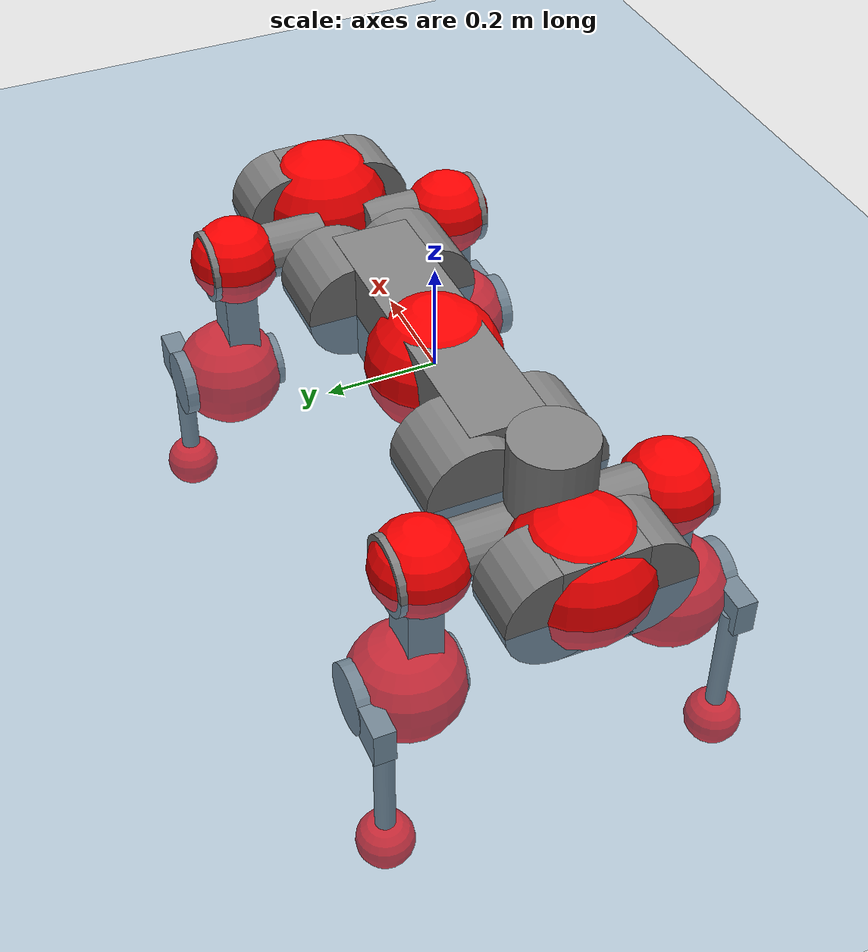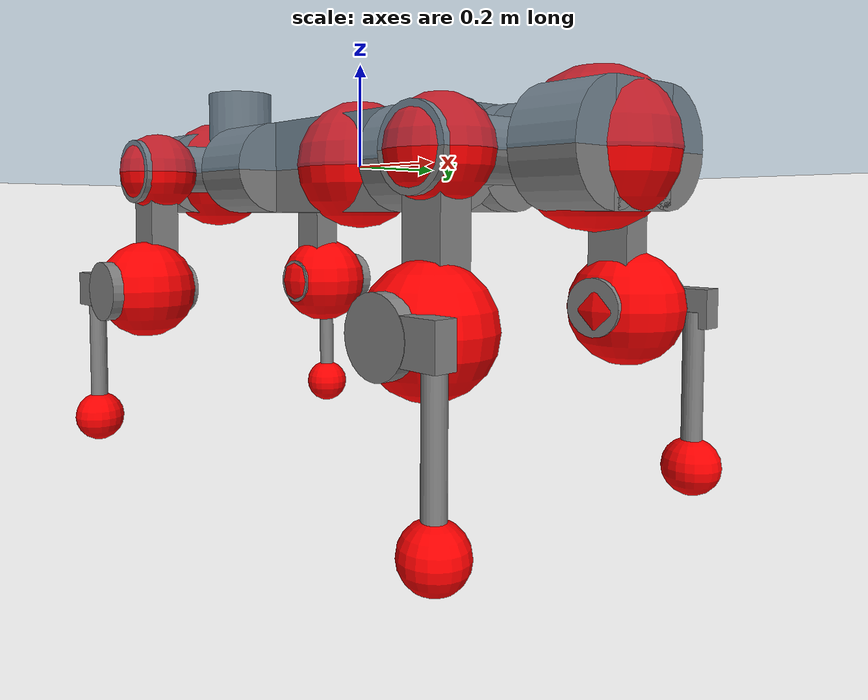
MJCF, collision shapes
<mujoco model="anymal_c">
  <compiler angle="radian" assetdir="assets" balanceinertia="true" inertiafromgeom="false"/>

  <option timestep="0.005" density="1.2" viscosity="2e-05"/>

  <size nkey="1"/>

  <visual>
    <quality shadowsize="8192"/>
    <map shadowclip="0.5"/>
  </visual>

  <default>
    <default class="/">
      <material specular="0" shininess="0.25"/>
      <geom contype="0" conaffinity="0" group="1" solref="-1000 -80"/>
      <site size="0.01 0.005 0.005" group="5"/>
      <general forcelimited="true" forcerange="-80 80" biastype="affine" gainprm="80" biasprm="0 -80 -2"/>
      <default class="anymal_c">
        <joint armature="0.01" damping="0.01" frictionloss="0.1"/>
        <default class="visual">
          <geom type="mesh" group="2"/>
          <default class="visual_zflip"/>
        </default>
        <default class="collision">
          <geom type="cylinder" group="3"/>
          <default class="foot">
            <geom size="0.03 0 0" type="sphere" condim="6" priority="1" friction="0.8 0.02 0.01" solimp="0.015 1 0.03"/>
          </default>
        </default>
      </default>
      <default class="reward_collision_sphere">
        <geom group="5" rgba="1 0 0 1"/>
      </default>
    </default>
  </default>

  <asset>
    <texture type="skybox" colorspace="auto" name="//unnamed_texture_0" builtin="gradient" rgb1="0.95 0.95 0.95" rgb2="0.95 0.95 0.95" width="100" height="600"/>
    <texture type="2d" colorspace="auto" name="texplane" builtin="checker" rgb1="0.345 0.575 0.748" rgb2="0.345 0.575 0.748" markrgb="1 1 1" width="512" height="512"/>
    <texture type="2d" colorspace="linear" name="base" file="base.png"/>
    <texture type="2d" colorspace="linear" name="top_shell" file="top_shell.png"/>
    <texture type="2d" colorspace="linear" name="bottom_shell" file="bottom_shell.png"/>
    <texture type="2d" colorspace="linear" name="remote" file="remote.png"/>
    <texture type="2d" colorspace="linear" name="hatch" file="hatch.png"/>
    <texture type="2d" colorspace="linear" name="handle" file="handle.png"/>
    <texture type="2d" colorspace="linear" name="face" file="face.png"/>
    <texture type="2d" colorspace="linear" name="battery" file="battery.png"/>
    <texture type="2d" colorspace="linear" name="lidar_cage" file="lidar_cage.png"/>
    <texture type="2d" colorspace="linear" name="depth_camera" file="depth_camera.png"/>
    <texture type="2d" colorspace="linear" name="wide_angle_camera" file="wide_angle_camera.png"/>
    <texture type="2d" colorspace="linear" name="lidar" file="lidar.png"/>
    <texture type="2d" colorspace="linear" name="drive" file="drive.png"/>
    <texture type="2d" colorspace="linear" name="hip_l" file="hip_l.png"/>
    <texture type="2d" colorspace="linear" name="shank_l" file="shank_l.png"/>
    <texture type="2d" colorspace="linear" name="foot" file="foot.png"/>
    <texture type="2d" colorspace="linear" name="thigh" file="thigh.png"/>
    <texture type="2d" colorspace="linear" name="shank_r" file="shank_r.png"/>
    <texture type="2d" colorspace="linear" name="hip_r" file="hip_r.png"/>
    <material name="MatPlane" class="/" texture="texplane" texuniform="true" texrepeat="2 2" specular="0.9" shininess="0.5"/>
    <material name="black_plastic" class="/" rgba="0.007 0.007 0.007 1"/>
    <material name="green" class="/" rgba="0.052 0.178 0.033 1"/>
    <material name="red" class="/" rgba="0.178 0.006 0.005 1"/>
    <material name="yellow" class="/" rgba="0.178 0.119 0.006 1"/>
    <material name="lwl" class="/" rgba="0.8 0.8 0.8 1"/>
    <material name="base" class="/" texture="base"/>
    <material name="top_shell" class="/" texture="top_shell"/>
    <material name="bottom_shell" class="/" texture="bottom_shell"/>
    <material name="hip_l" class="/" texture="hip_l"/>
    <material name="thigh" class="/" texture="thigh"/>
    <material name="shank_l" class="/" texture="shank_l"/>
    <material name="foot" class="/" texture="foot"/>
    <material name="hip_r" class="/" texture="hip_r"/>
    <material name="shank" class="/" texture="shank_r"/>
    <material name="hatch" class="/" texture="hatch"/>
    <material name="remote" class="/" texture="remote"/>
    <material name="handle" class="/" texture="handle"/>
    <material name="face" class="/" texture="face"/>
    <material name="depth_camera" class="/" texture="depth_camera"/>
    <material name="wide_angle_camera" class="/" texture="wide_angle_camera"/>
    <material name="battery" class="/" texture="battery"/>
    <material name="lidar_cage" class="/" texture="lidar_cage"/>
    <material name="lidar" class="/" texture="lidar"/>
    <material name="drive" class="/" texture="drive"/>
    <mesh name="base_0" class="/" file="base_0.obj"/>
    <mesh name="base_1" class="/" file="base_1.obj"/>
    <mesh name="base_2" class="/" file="base_2.obj"/>
    <mesh name="base_3" class="/" file="base_3.obj"/>
    <mesh name="base_4" class="/" file="base_4.obj"/>
    <mesh name="base_5" class="/" file="base_5.obj"/>
    <mesh name="top_shell" class="/" file="top_shell.obj"/>
    <mesh name="bottom_shell" class="/" file="bottom_shell.obj"/>
    <mesh name="remote" class="/" file="remote.obj"/>
    <mesh name="handle" class="/" file="handle.obj"/>
    <mesh name="face" class="/" file="face.obj"/>
    <mesh name="wide_angle_camera" class="/" file="wide_angle_camera.obj"/>
    <mesh name="depth_camera" class="/" file="depth_camera.obj"/>
    <mesh name="battery" class="/" file="battery.obj"/>
    <mesh name="lidar_cage" class="/" file="lidar_cage.obj"/>
    <mesh name="lidar" class="/" file="lidar.obj"/>
    <mesh name="drive" class="/" file="drive.obj"/>
    <mesh name="hip_l" class="/" file="hip_l.obj"/>
    <mesh name="thigh" class="/" file="thigh.obj"/>
    <mesh name="shank_l" class="/" file="shank_l.obj"/>
    <mesh name="foot" class="/" file="foot.obj"/>
    <mesh name="hip_r" class="/" file="hip_r.obj"/>
    <mesh name="hatch" class="/" file="hatch.obj"/>
    <mesh name="shank_r" class="/" file="shank_r.obj"/>
  </asset>

  <worldbody>
    <geom name="floor" class="/" size="100 100 0.125" type="plane" group="0" material="MatPlane"/>
    <light name="toplight_shadow" class="/" pos="0 0 5" dir="0.0990148 0.0990148 -0.990148" type="directional" ambient="0.04 0.04 0.04" diffuse="0.55 0.55 0.55" specular="0.12 0.12 0.12"/>
    <light name="toplight_fill" class="/" pos="0 0 5" dir="0.0990148 0.0990148 -0.990148" type="directional" castshadow="false" ambient="0.04 0.04 0.04" diffuse="0.3 0.3 0.3" specular="0.08 0.08 0.08"/>
    <body name="trunk" childclass="anymal_c" pos="-0.000483649 0.000302767 0.0043896" quat="1 0.000640879 0.000451503 -0.000340537">
      <inertial pos="0.00484178 -0.00808988 0.0402484" quat="0.500201 0.49933 0.501202 0.499265" mass="22.6872" diaginertia="1.59533 0.682832 0.134827"/>
      <joint name="//unnamed_joint_0" type="free" armature="0" damping="0" frictionloss="0"/>
      <geom name="//unnamed_geom_1" class="visual" material="green" mesh="base_0"/>
      <geom name="//unnamed_geom_2" class="visual" material="yellow" mesh="base_1"/>
      <geom name="//unnamed_geom_3" class="visual" material="red" mesh="base_2"/>
      <geom name="//unnamed_geom_4" class="visual" material="black_plastic" mesh="base_3"/>
      <geom name="//unnamed_geom_5" class="visual" material="lwl" mesh="base_4"/>
      <geom name="//unnamed_geom_6" class="visual" material="base" mesh="base_5"/>
      <geom name="trunk_1" class="collision" size="0.303 0.073138 0.0940345" type="box"/>
      <geom name="trunk_2" class="collision" size="0.0940345 0.07575" pos="0.264574 0.0706139 0" quat="0.707107 0 0.707107 0"/>
      <geom name="trunk_3" class="collision" size="0.0940345 0.07575" pos="-0.264574 0.0706139 0" quat="0.707107 0 0.707107 0"/>
      <geom name="trunk_4" class="collision" size="0.0940345 0.07575" pos="0.264574 -0.0706139 0" quat="0.707107 0 0.707107 0"/>
      <geom name="trunk_5" class="collision" size="0.0940345 0.07575" pos="-0.264574 -0.0706139 0" quat="0.707107 0 0.707107 0"/>
      <geom name="//unnamed_geom_12" class="visual" material="top_shell" mesh="top_shell"/>
      <geom name="//unnamed_geom_13" class="visual" material="bottom_shell" mesh="bottom_shell"/>
      <geom name="//unnamed_geom_14" class="visual" material="remote" mesh="remote"/>
      <geom name="//unnamed_geom_15" class="visual" material="handle" mesh="handle"/>
      <geom name="//unnamed_geom_16" class="visual" pos="0.504211 0 0" quat="1 0 0 0" material="face" mesh="face"/>
      <geom name="trunk_6" class="collision" size="0.0574655 0.073138 0.0940345" pos="0.571115 0 0" type="box"/>
      <geom name="//unnamed_geom_18" class="collision" size="0.0940345 0.0574655" pos="0.571115 0.0706139 0" quat="0.707107 0 0.707107 0"/>
      <geom name="//unnamed_geom_19" class="collision" size="0.0940345 0.0574655" pos="0.571115 -0.0706139 0" quat="0.707107 0 0.707107 0"/>
      <geom name="//unnamed_geom_20" class="visual" pos="0.561553 0 -0.0242166" quat="0.965926 0 0.258819 0" material="depth_camera" mesh="depth_camera"/>
      <geom name="//unnamed_geom_21" class="visual" pos="0.62403 0 0.0136119" material="wide_angle_camera" mesh="wide_angle_camera"/>
      <geom name="//unnamed_geom_22" class="visual_zflip" pos="-0.504211 0 0" quat="0 0 0 1" material="face" mesh="face"/>
      <geom name="trunk_7" class="collision" size="0.0574655 0.073138 0.0940345" pos="-0.571115 0 0" quat="0 0 0 1" type="box"/>
      <geom name="//unnamed_geom_24" class="collision" size="0.0940345 0.0574655" pos="-0.571115 -0.0706139 0" quat="0 -0.707107 0 0.707107"/>
      <geom name="//unnamed_geom_25" class="collision" size="0.0940345 0.0574655" pos="-0.571115 0.0706139 0" quat="0 -0.707107 0 0.707107"/>
      <geom name="//unnamed_geom_26" class="visual" pos="-0.561553 0 -0.0242166" quat="0 -0.258819 0 0.965926" material="depth_camera" mesh="depth_camera"/>
      <geom name="//unnamed_geom_27" class="visual_zflip" pos="-0.62403 0 0.0136119" quat="0 0 0 1" material="wide_angle_camera" mesh="wide_angle_camera"/>
      <geom name="//unnamed_geom_28" class="visual" material="battery" mesh="battery"/>
      <geom name="//unnamed_geom_29" class="visual" pos="0 0.0743929 0.028749" quat="0.683013 -0.183013 0.183013 0.683013" material="depth_camera" mesh="depth_camera"/>
      <geom name="//unnamed_geom_30" class="visual" pos="0 -0.0743929 0.028749" quat="0.683013 0.183013 0.183013 -0.683013" material="depth_camera" mesh="depth_camera"/>
      <geom name="//unnamed_geom_31" class="visual" pos="-0.442782 0 0.0668321" quat="1 0 0 0" material="lidar_cage" mesh="lidar_cage"/>
      <geom name="trunk_8" class="collision" size="0.073138 0.0626897" pos="-0.442782 0 0.121389"/>
      <geom name="//unnamed_geom_33" class="visual" pos="-0.442782 -8.15851e-05 0.1293" quat="0.707107 0 0 -0.707107" material="lidar" mesh="lidar"/>
      <geom name="//unnamed_geom_34" class="visual" pos="0.364808 0.104877 1.7162e-09" quat="0.258819 0.965926 0 0" material="drive" mesh="drive"/>
      <geom name="//unnamed_geom_35" class="visual" pos="0.364808 -0.104877 -1.7162e-09" quat="0.258819 -0.965926 0 0" material="drive" mesh="drive"/>
      <geom name="//unnamed_geom_36" class="visual" pos="-0.364808 0.104877 -1.7162e-09" quat="0 0 0.965926 -0.258819" material="drive" mesh="drive"/>
      <geom name="//unnamed_geom_37" class="visual" pos="-0.364808 -0.104877 1.7162e-09" quat="0 0 -0.965926 -0.258819" material="drive" mesh="drive"/>
      <geom name="//unnamed_geom_38" class="visual" pos="0.141106 0 0.0663775" quat="1 0 0 0" material="hatch" mesh="hatch"/>
      <geom name="//unnamed_geom_39" class="reward_collision_sphere" size="0.125379"/>
      <geom name="//unnamed_geom_40" class="reward_collision_sphere" size="0.125379" pos="0.547395 0 0"/>
      <geom name="//unnamed_geom_41" class="reward_collision_sphere" size="0.125379" pos="-0.547395 0 0"/>
      <site name="imu" pos="0.301415 0.020875 0.0392755" size="0.0104483"/>
      <camera name="track" pos="0 -2.01754 0" quat="0.707107 0.707107 0 0" mode="trackcom"/>
      <camera name="ego_camera" pos="0.547395 0 -0.0363712" quat="-0.5 -0.5 0.5 0.5"/>
      <body name="LF_HIP" pos="0.363768 0.108258 0.00204651" quat="0.258606 0.965983 -2.31205e-05 0.000260018">
        <inertial pos="0.0754451 -0.0166941 -0.00531434" quat="-0.122562 0.705412 -0.135274 0.684889" mass="3.13141" diaginertia="0.0155291 0.00526187 0.00196696"/>
        <joint name="LF_HAA" pos="0 0 0" axis="0.999987 -0.0048505 -0.00182613" range="-0.695442 0.480015" armature="0.00865149" damping="0" frictionloss="0.136032"/>
        <geom name="//unnamed_geom_42" class="visual" pos="0 0.000100957 -1.6582e-05" quat="0.258819 -0.965926 0 0" material="hip_l" mesh="hip_l"/>
        <geom name="//unnamed_geom_43" class="visual" pos="0.0728643 -0.0855211 -0.0486398" quat="0.183013 -0.683013 0.683013 0.183013" material="drive" mesh="drive"/>
        <geom name="//unnamed_geom_44" class="collision" size="0.0522414 0.073138" pos="0.0728643 -0.0120647 -0.00627858" quat="-0.353553 -0.612372 0.612372 -0.353553"/>
        <body name="LF_THIGH" pos="0.0738005 -0.0753615 -0.039492" quat="0.183189 -0.683102 0.682979 0.182628">
          <inertial pos="0.0361351 -0.000427279 -0.221032" quat="0.993769 0.0010848 -0.0802781 0.0773193" mass="3.84465" diaginertia="0.0790115 0.0316799 0.00313714"/>
          <joint name="LF_HFE" pos="0 0 0" axis="0.999973 0.00549645 -0.00491262" range="-3.06691 3.1158" armature="0.0105906" damping="0.00924166" frictionloss="0.115103"/>
          <geom name="//unnamed_geom_45" class="visual" pos="0.00413167 6.51054e-06 0" quat="0.707107 0 0 -0.707107" material="thigh" mesh="thigh"/>
          <geom name="//unnamed_geom_46" class="collision" size="0.0679138 0.0417931" pos="0.0486573 0 0" quat="0.5 0.5 -0.5 -0.5"/>
          <geom name="//unnamed_geom_47" class="collision" size="0.039181 0.0313448 0.147649" pos="0.036493 0 -0.128494" quat="0.707107 0 0 -0.707107" type="box"/>
          <geom name="//unnamed_geom_48" class="visual" pos="0.122008 0 -0.259145" quat="1 0 0 0" material="drive" mesh="drive"/>
          <geom name="//unnamed_geom_49" class="collision" size="0.0522414 0.073138" pos="0.0368579 0 -0.259145" quat="0.707107 0 0.707107 0"/>
          <geom name="//unnamed_geom_50" class="reward_collision_sphere" size="0.0835862" pos="0.0304108 0 0"/>
          <body name="LF_SHANK" pos="0.123251 -0.00419717 -0.264162" quat="0.999993 -0.000201747 -0.00356314 -0.00127141">
            <inertial pos="0.00464155 -0.0619255 -0.0732628" quat="0.993014 -0.115707 -3.5647e-05 -0.0231276" mass="0.715578" diaginertia="0.0268784 0.0100273 0.000756297"/>
            <joint name="LF_KFE" pos="0 0 0" axis="0.999993 0.00329413 -0.00149545" stiffness="0.00142668" range="-3.10179 3.10973" armature="0.0112418" damping="0" frictionloss="0.127563"/>
            <geom name="//unnamed_geom_51" class="visual" pos="0.00134725 0.00718359 0" quat="0.707107 0 0 -0.707107" material="shank_l" mesh="shank_l"/>
            <geom name="LF_kfe_act" class="collision" size="0.0626897 0.0208966" pos="0.0243287 0 0" quat="0.5 0.5 -0.5 -0.5"/>
            <geom name="//unnamed_geom_53" class="collision" size="0.0600766 0.0352629 0.0198517" pos="0.0243287 -0.0580033 0" quat="0.5 0.5 -0.5 -0.5" type="box"/>
            <geom name="//unnamed_geom_54" class="visual" pos="0.0158741 -0.0864064 -0.30731" quat="0.382683 0 0 -0.92388" material="foot" mesh="foot"/>
            <geom name="LF_calf" class="collision" size="0.0182845 0.147584" pos="0.0158744 -0.0887213 -0.153655" quat="0.707107 0 0 -0.707107"/>
            <geom name="LF_foot" class="foot" size="0.0247462" pos="0.0158744 -0.0887213 -0.286851" quat="0.707107 0 0 -0.707107"/>
            <geom name="//unnamed_geom_57" class="reward_collision_sphere" size="0.104483" pos="-0.0608216 0 0"/>
            <geom name="//unnamed_geom_58" class="reward_collision_sphere" size="0.0522414" pos="0.0158744 -0.0887213 -0.286851"/>
            <site name="LF_foot" class="foot" pos="0.0158744 -0.0887213 -0.286851" quat="0.707107 0 0 -0.707107" size="0.0104483"/>
          </body>
        </body>
      </body>
      <body name="RF_HIP" pos="0.364763 -0.101917 -0.000619747" quat="0.261471 -0.965211 0.000447384 0.000812031">
        <inertial pos="0.0686193 0.0174651 -0.00922353" quat="0.136354 0.677825 0.126195 0.711362" mass="3.46088" diaginertia="0.0165508 0.00572559 0.00202611"/>
        <joint name="RF_HAA" pos="0 0 0" axis="0.999994 -0.0028181 -0.00204806" range="-0.59504 0.869611" armature="0.00970581" damping="0.0114919" frictionloss="0.122807"/>
        <geom name="//unnamed_geom_59" class="visual" pos="0 -0.000100956 -1.6582e-05" quat="0.258819 0.965926 0 0" material="hip_r" mesh="hip_r"/>
        <geom name="//unnamed_geom_60" class="visual" pos="0.0728643 0.0855211 -0.0486398" quat="0.183013 0.683013 0.683013 -0.183013" material="drive" mesh="drive"/>
        <geom name="//unnamed_geom_61" class="collision" size="0.0522414 0.073138" pos="0.0728643 0.0120647 -0.00627858" quat="-0.353553 0.612372 0.612372 0.353553"/>
        <body name="RF_THIGH" pos="0.0639901 0.0705131 -0.0373984" quat="0.182876 0.683123 0.682996 -0.182801">
          <inertial pos="0.0392633 -0.00187604 -0.222922" quat="0.992842 -0.00664263 -0.0807079 0.0877891" mass="3.17406" diaginertia="0.0780374 0.0280524 0.00234129"/>
          <joint name="RF_HFE" pos="0 0 0" axis="0.999233 -0.0220388 0.0323634" stiffness="0.00489988" range="-3.32798 3.29034" armature="0.0112184" damping="0.033445" frictionloss="0.0992373"/>
          <geom name="//unnamed_geom_62" class="visual" pos="0.00413167 6.51054e-06 0" quat="0.707107 0 0 -0.707107" material="thigh" mesh="thigh"/>
          <geom name="//unnamed_geom_63" class="collision" size="0.0679138 0.0417931" pos="0.0486573 0 0" quat="0.5 0.5 0.5 0.5"/>
          <geom name="//unnamed_geom_64" class="collision" size="0.039181 0.0313448 0.147649" pos="0.036493 0 -0.128494" quat="0.707107 0 0 0.707107" type="box"/>
          <geom name="//unnamed_geom_65" class="visual" pos="0.122008 0 -0.259145" quat="1 0 0 0" material="drive" mesh="drive"/>
          <geom name="//unnamed_geom_66" class="collision" size="0.0522414 0.073138" pos="0.0368579 0 -0.259145" quat="0.707107 0 0.707107 0"/>
          <geom name="//unnamed_geom_67" class="reward_collision_sphere" size="0.0835862" pos="0.0304108 0 0"/>
          <body name="RF_SHANK" pos="0.114108 0.00142048 -0.261336" quat="1 -0.000384433 4.98755e-05 -0.000580745">
            <inertial pos="0.00737795 0.0607776 -0.0820369" quat="0.992827 0.116667 -0.00263282 0.0260122" mass="0.755423" diaginertia="0.0261553 0.00948706 0.000684221"/>
            <joint name="RF_KFE" pos="0 0 0" axis="0.998863 0.0339163 0.0334939" stiffness="0.000768495" range="-3.12959 3.25997" armature="0.0103511" damping="0.0177677" frictionloss="0.153661"/>
            <geom name="//unnamed_geom_68" class="visual" pos="0.00134724 -0.00718358 0" quat="0.707107 0 0 0.707107" material="shank" mesh="shank_r"/>
            <geom name="RF_kfe_act" class="collision" size="0.0626897 0.0208966" pos="0.0243287 0 0" quat="0.5 0.5 0.5 0.5"/>
            <geom name="//unnamed_geom_70" class="collision" size="0.0600766 0.0352629 0.0198517" pos="0.0243287 0.0580033 0" quat="0.5 0.5 0.5 0.5" type="box"/>
            <geom name="//unnamed_geom_71" class="visual" pos="0.0158748 0.0864064 -0.30731" quat="0.382683 0 0 0.92388" material="foot" mesh="foot"/>
            <geom name="RF_calf" class="collision" size="0.0182845 0.147584" pos="0.0158744 0.0887213 -0.153655" quat="0.707107 0 0 0.707107"/>
            <geom name="RF_foot" class="foot" size="0.0316146" pos="0.0158744 0.0887213 -0.286851" quat="0.707107 0 0 0.707107"/>
            <geom name="//unnamed_geom_74" class="reward_collision_sphere" size="0.104483" pos="-0.0608216 0 0"/>
            <geom name="//unnamed_geom_75" class="reward_collision_sphere" size="0.0522414" pos="0.0158744 0.0887213 -0.286851"/>
            <site name="RF_foot" class="foot" pos="0.0158744 0.0887213 -0.286851" quat="0.707107 0 0 0.707107" size="0.0104483"/>
          </body>
        </body>
      </body>
      <body name="LH_HIP" pos="-0.365658 0.10031 0.00152758" quat="0.000837153 -0.000252029 0.965958 -0.258699">
        <inertial pos="0.0709508 0.0216352 -0.00599271" quat="0.135946 0.64234 0.143072 0.740573" mass="3.56853" diaginertia="0.0156227 0.00491907 0.00208637"/>
        <joint name="LH_HAA" pos="0 0 0" axis="0.999747 -0.0223899 0.00193385" stiffness="0.0249182" range="-0.470922 0.757584" armature="0.0101933" damping="0.0249798" frictionloss="0.0934029"/>
        <geom name="//unnamed_geom_76" class="visual" pos="0 -0.000100956 -1.6582e-05" quat="-0.258819 -0.965926 0 0" material="hip_r" mesh="hip_r"/>
        <geom name="//unnamed_geom_77" class="visual" pos="0.0728643 0.0855211 -0.0486398" quat="0.183013 0.683013 0.683013 -0.183013" material="drive" mesh="drive"/>
        <geom name="//unnamed_geom_78" class="collision" size="0.0522414 0.073138" pos="0.0728643 0.0120647 -0.00627858" quat="-0.353553 0.612372 0.612372 0.353553"/>
        <body name="LH_THIGH" pos="0.0715421 0.0796407 -0.0363978" quat="0.183595 0.683553 0.682474 -0.182424">
          <inertial pos="0.0376895 0.00428232 -0.222966" quat="0.993198 -0.00456849 -0.0781465 0.0861924" mass="3.3907" diaginertia="0.0714395 0.0291265 0.00229684"/>
          <joint name="LH_HFE" pos="0 0 0" axis="0.999999 0.000293726 0.00103359" range="-3.12855 3.1454" armature="0.0108565" damping="0.00616886" frictionloss="0.101149"/>
          <geom name="//unnamed_geom_79" class="visual" pos="0.00413167 6.51054e-06 0" quat="0.707107 0 0 -0.707107" material="thigh" mesh="thigh"/>
          <geom name="//unnamed_geom_80" class="collision" size="0.0679138 0.0417931" pos="0.0486573 0 0" quat="0.5 0.5 -0.5 -0.5"/>
          <geom name="//unnamed_geom_81" class="collision" size="0.039181 0.0313448 0.147649" pos="0.036493 0 -0.128494" quat="0.707107 0 0 -0.707107" type="box"/>
          <geom name="//unnamed_geom_82" class="visual" pos="0.122008 0 -0.259145" quat="1 0 0 0" material="drive" mesh="drive"/>
          <geom name="//unnamed_geom_83" class="collision" size="0.0522414 0.073138" pos="0.0368579 0 -0.259145" quat="0.707107 0 0.707107 0"/>
          <geom name="//unnamed_geom_84" class="reward_collision_sphere" size="0.0835862" pos="0.0304108 0 0"/>
          <body name="LH_SHANK" pos="0.117049 0.000612391 -0.258719" quat="0.999996 -0.00111257 -0.00193197 -0.00193101">
            <inertial pos="0.00142424 0.061905 -0.0693457" quat="0.993024 0.115103 -0.00148621 0.0255437" mass="0.637242" diaginertia="0.0236409 0.00766817 0.000532786"/>
            <joint name="LH_KFE" pos="0 0 0" axis="0.999866 0.0153716 -0.00566299" range="-3.13408 3.34115" armature="0.0107549" damping="0" frictionloss="0.0951209"/>
            <geom name="//unnamed_geom_85" class="visual" pos="0.00134724 -0.00718358 0" quat="-0.707107 0 0 -0.707107" material="shank" mesh="shank_r"/>
            <geom name="LH_kfe_act" class="collision" size="0.0626897 0.0208966" pos="0.0243287 0 0" quat="0.5 0.5 -0.5 -0.5"/>
            <geom name="//unnamed_geom_87" class="collision" size="0.0600766 0.0352629 0.0198517" pos="0.0243287 0.0580033 0" quat="0.5 0.5 -0.5 -0.5" type="box"/>
            <geom name="//unnamed_geom_88" class="visual" pos="0.0158748 0.0864064 -0.30731" quat="-0.382683 0 0 -0.92388" material="foot" mesh="foot"/>
            <geom name="LH_calf" class="collision" size="0.0182845 0.147584" pos="0.0158744 0.0887213 -0.153655" quat="0.707107 0 0 -0.707107"/>
            <geom name="LH_foot" class="foot" size="0.0409471" pos="0.0158744 0.0887213 -0.286851" quat="0.707107 0 0 -0.707107"/>
            <geom name="//unnamed_geom_91" class="reward_collision_sphere" size="0.104483" pos="-0.0608216 0 0"/>
            <geom name="//unnamed_geom_92" class="reward_collision_sphere" size="0.0522414" pos="0.0158744 0.0887213 -0.286851"/>
            <site name="LH_foot" class="foot" pos="0.0158744 0.0887213 -0.286851" quat="0.707107 0 0 -0.707107" size="0.0104483"/>
          </body>
        </body>
      </body>
      <body name="RH_HIP" pos="-0.36543 -0.110356 0.00459791" quat="-0.000907314 -0.00309793 -0.966086 -0.258201">
        <inertial pos="0.0700625 -0.0173086 -0.00623155" quat="-0.152339 0.727519 -0.104851 0.660693" mass="3.29389" diaginertia="0.0156444 0.00550254 0.00215688"/>
        <joint name="RH_HAA" pos="0 0 0" axis="1 -0.000393051 0.000651584" range="-0.5934 0.509473" armature="0.0142693" damping="0.0196652" frictionloss="0.0869807"/>
        <geom name="//unnamed_geom_93" class="visual" pos="0 0.000100957 -1.6582e-05" quat="-0.258819 0.965926 0 0" material="hip_l" mesh="hip_l"/>
        <geom name="//unnamed_geom_94" class="visual" pos="0.0728643 -0.0855211 -0.0486398" quat="-0.183013 0.683013 -0.683013 -0.183013" material="drive" mesh="drive"/>
        <geom name="//unnamed_geom_95" class="collision" size="0.0522414 0.073138" pos="0.0728643 -0.0120647 -0.00627858" quat="0.353553 0.612372 -0.612372 0.353553"/>
        <body name="RH_THIGH" pos="0.0709175 -0.071405 -0.0299496" quat="-0.18258 0.682772 -0.683331 -0.183155">
          <inertial pos="0.037464 -0.00961047 -0.226104" quat="0.992046 0.00646622 -0.10222 0.0731768" mass="3.92812" diaginertia="0.0880191 0.034316 0.00283908"/>
          <joint name="RH_HFE" pos="0 0 0" axis="0.999843 0.0119582 0.0130963" range="-3.16106 3.29302" armature="0.00506743" damping="0.00586231" frictionloss="0.105168"/>
          <geom name="//unnamed_geom_96" class="visual" pos="0.00413167 6.51054e-06 0" quat="0.707107 0 0 -0.707107" material="thigh" mesh="thigh"/>
          <geom name="//unnamed_geom_97" class="collision" size="0.0679138 0.0417931" pos="0.0486573 0 0" quat="0.5 0.5 0.5 0.5"/>
          <geom name="//unnamed_geom_98" class="collision" size="0.039181 0.0313448 0.147649" pos="0.036493 0 -0.128494" quat="0.707107 0 0 0.707107" type="box"/>
          <geom name="//unnamed_geom_99" class="visual" pos="0.122008 0 -0.259145" quat="1 0 0 0" material="drive" mesh="drive"/>
          <geom name="//unnamed_geom_100" class="collision" size="0.0522414 0.073138" pos="0.0368579 0 -0.259145" quat="0.707107 0 0.707107 0"/>
          <geom name="//unnamed_geom_101" class="reward_collision_sphere" size="0.0835862" pos="0.0304108 0 0"/>
          <body name="RH_SHANK" pos="0.124802 0.00533029 -0.256886" quat="0.999997 0.00136577 0.000659132 0.0017913">
            <inertial pos="0.00473895 -0.0626328 -0.0732922" quat="0.993922 -0.0922854 -0.00655312 -0.0596656" mass="0.750107" diaginertia="0.0282348 0.00986457 0.000626802"/>
            <joint name="RH_KFE" pos="0 0 0" axis="0.999342 0.00549472 0.0358621" range="-3.24973 3.00114" armature="0.00953965" damping="0.00789007" frictionloss="0.113622"/>
            <geom name="//unnamed_geom_102" class="visual" pos="0.00134725 0.00718359 0" quat="0.707107 0 0 -0.707107" material="shank_l" mesh="shank_l"/>
            <geom name="RH_kfe_act" class="collision" size="0.0626897 0.0208966" pos="0.0243287 0 0" quat="0.5 0.5 0.5 0.5"/>
            <geom name="//unnamed_geom_104" class="collision" size="0.0600766 0.0352629 0.0198517" pos="0.0243287 -0.0580033 0" quat="0.5 0.5 0.5 0.5" type="box"/>
            <geom name="//unnamed_geom_105" class="visual" pos="0.0158741 -0.0864064 -0.30731" quat="0.382683 0 0 -0.92388" material="foot" mesh="foot"/>
            <geom name="RH_calf" class="collision" size="0.0182845 0.147584" pos="0.0158744 -0.0887213 -0.153655" quat="0.707107 0 0 0.707107"/>
            <geom name="RH_foot" class="foot" size="0.0424157" pos="0.0158744 -0.0887213 -0.286851" quat="0.707107 0 0 0.707107"/>
            <geom name="//unnamed_geom_108" class="reward_collision_sphere" size="0.104483" pos="-0.0608216 0 0"/>
            <geom name="//unnamed_geom_109" class="reward_collision_sphere" size="0.0522414" pos="0.0158744 -0.0887213 -0.286851"/>
            <site name="RH_foot" class="foot" pos="0.0158744 -0.0887213 -0.286851" quat="0.707107 0 0 0.707107" size="0.0104483"/>
          </body>
        </body>
      </body>
    </body>
  </worldbody>

  <contact>
    <pair class="/" geom1="floor" geom2="LF_foot" name="//unnamed_contact_0"/>
    <pair class="/" geom1="floor" geom2="RF_foot" name="//unnamed_contact_1"/>
    <pair class="/" geom1="floor" geom2="LH_foot" name="//unnamed_contact_2"/>
    <pair class="/" geom1="floor" geom2="RH_foot" name="//unnamed_contact_3"/>
  </contact>

  <actuator>
    <general name="LF_HAA" class="/" joint="LF_HAA" forcerange="-91.7922 91.7922" gainprm="67.3961" biasprm="0 -67.3961 -2.02407"/>
    <general name="LF_HFE" class="/" joint="LF_HFE" forcerange="-112.745 112.745" gainprm="67.3961" biasprm="0 -67.3961 -2.02407"/>
    <general name="LF_KFE" class="/" joint="LF_KFE" forcerange="-85.7989 85.7989" gainprm="67.3961" biasprm="0 -67.3961 -2.02407"/>
    <general name="RF_HAA" class="/" joint="RF_HAA" forcerange="-83.0207 83.0207" gainprm="67.3961" biasprm="0 -67.3961 -2.02407"/>
    <general name="RF_HFE" class="/" joint="RF_HFE" forcerange="-82.8732 82.8732" gainprm="67.3961" biasprm="0 -67.3961 -2.02407"/>
    <general name="RF_KFE" class="/" joint="RF_KFE" forcerange="-88.478 88.478" gainprm="67.3961" biasprm="0 -67.3961 -2.02407"/>
    <general name="LH_HAA" class="/" joint="LH_HAA" forcerange="-71.8386 71.8386" gainprm="67.3961" biasprm="0 -67.3961 -2.02407"/>
    <general name="LH_HFE" class="/" joint="LH_HFE" forcerange="-85.5246 85.5246" gainprm="67.3961" biasprm="0 -67.3961 -2.02407"/>
    <general name="LH_KFE" class="/" joint="LH_KFE" forcerange="-90.5763 90.5763" gainprm="67.3961" biasprm="0 -67.3961 -2.02407"/>
    <general name="RH_HAA" class="/" joint="RH_HAA" forcerange="-111.99 111.99" gainprm="67.3961" biasprm="0 -67.3961 -2.02407"/>
    <general name="RH_HFE" class="/" joint="RH_HFE" forcerange="-79.2853 79.2853" gainprm="67.3961" biasprm="0 -67.3961 -2.02407"/>
    <general name="RH_KFE" class="/" joint="RH_KFE" forcerange="-80.2243 80.2243" gainprm="67.3961" biasprm="0 -67.3961 -2.02407"/>
  </actuator>

  <sensor>
    <gyro site="imu" name="imu_angular_velocity"/>
    <velocimeter site="imu" name="imu_linear_velocity"/>
    <framelinvel objtype="site" objname="LF_foot" name="LF_foot_global_linear_velocity"/>
    <framelinvel objtype="site" objname="RF_foot" name="RF_foot_global_linear_velocity"/>
    <framelinvel objtype="site" objname="LH_foot" name="LH_foot_global_linear_velocity"/>
    <framelinvel objtype="site" objname="RH_foot" name="RH_foot_global_linear_velocity"/>
  </sensor>

  <keyframe>
    <key name="home" qpos="0 0 0.55 1 0 0 0 0 0.4 -0.8 0 -0.4 0.8 0 -0.4 0.8 0 0.4 -0.8"/>
  </keyframe>
</mujoco>
